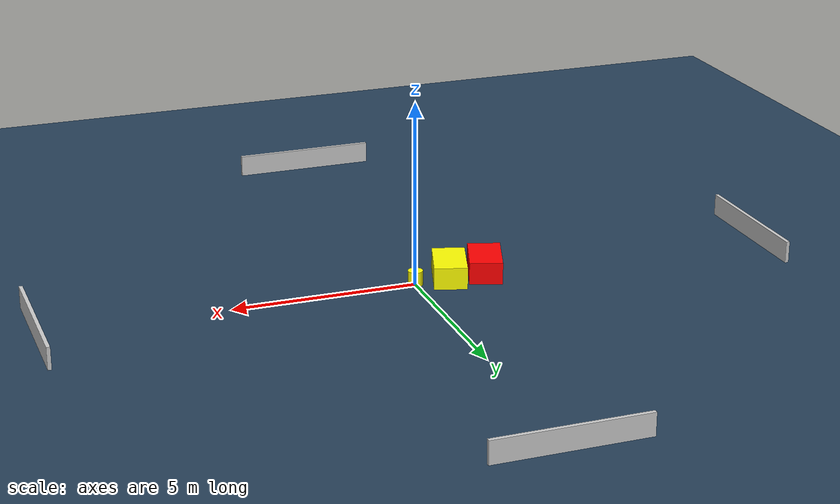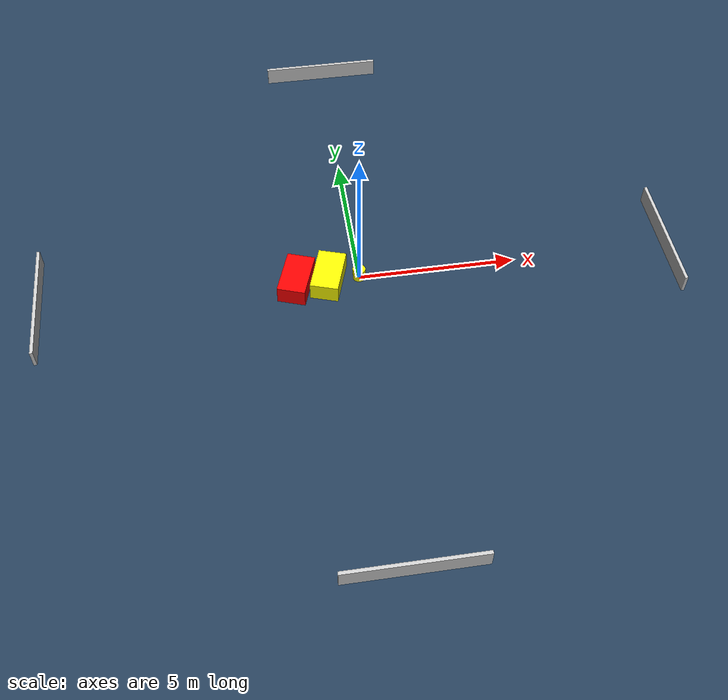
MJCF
<?xml version="1.0" ?>
<mujoco model="generated_environment">
  <option timestep="0.01" integrator="RK4" cone="elliptic"/>
  <default>
    <geom density="1"/>
  </default>
  <asset>
    <texture builtin="gradient" height="3072" name="skybox" rgb1="0.3 0.5 0.7" rgb2="0 0 0" type="skybox" width="512"/>
    <texture builtin="checker" height="300" name="groundplane" rgb1="0.2 0.3 0.4" rgb2="0.1 0.2 0.3" type="2d" width="300"/>
    <material name="groundplane" reflectance="0.2" texrepeat="5 5" texture="groundplane"/>
  </asset>
  <worldbody>
    <light dir="0 0 -1" directional="true" pos="0 0 1.5"/>
    <geom condim="3" friction="0.5 0.005 0.001" material="groundplane" name="floor" pos="0 0 0" size="0 0 0.05" type="plane"/>
    <body name="walls">
      <geom name="wall_1" condim="4" pos="-10.0 0.0 0.3" rgba="0.800000011920929 0.800000011920929 0.800000011920929 1.0" size="0.05 2.0 0.3" type="box"/>
      <geom name="wall_2" condim="4" pos="10.0 0.0 0.3" rgba="0.800000011920929 0.800000011920929 0.800000011920929 1.0" size="0.05 2.0 0.3" type="box"/>
      <geom name="wall_3" condim="4" pos="0.0 -10.0 0.3" rgba="0.800000011920929 0.800000011920929 0.800000011920929 1.0" size="2.0 0.05 0.3" type="box"/>
      <geom name="wall_4" condim="4" pos="0.0 10.0 0.3" rgba="0.800000011920929 0.800000011920929 0.800000011920929 1.0" size="2.0 0.05 0.3" type="box"/>
    </body>
    <body name="robot">
      <joint name="joint_x" type="slide" pos="0 0 0" axis="1 0 0"/>
      <joint name="joint_y" type="slide" pos="0 0 0" axis="0 1 0"/>
      <geom name="robot" type="cylinder" pos="0.0 0.0 0.2" size="0.2 0.2 0.0" mass="5.0" friction="1.0 0.005 0.0001" condim="4" rgba="1.0 1.0 0.0 1.0"/>
    </body>
    <body name="obstacle_1_movable">
      <geom name="obstacle_1_movable" condim="4" pos="-0.9811926965638477 -0.04916752008070482 0.3" euler="0 0 252.12772491371067" friction="0.0 0.005 0.001" rgba="1.0 1.0 0.0 1.0" size="0.7377207754292152 0.4423556847741715 0.3" type="box" mass="0.1"/>
      <joint type="free"/>
    </body>
    <body name="obstacle_2_static">
      <geom name="obstacle_2_static" condim="4" pos="-1.993172744688247 -0.05282836558733264 0.3" euler="0 0 160.88020568543297" friction="0.0 0.005 0.001" rgba="1.0 0.0 0.0 1.0" size="0.4427578835907061 0.7383440796835963 0.3" type="box"/>
    </body>
  </worldbody>
  <actuator>
    <motor name="actuator_x" joint="joint_x" gear="1" ctrlrange="-1 1"/>
    <motor name="actuator_y" joint="joint_y" gear="1" ctrlrange="-1 1"/>
  </actuator>
</mujoco>
